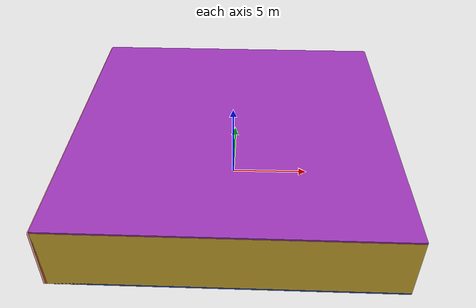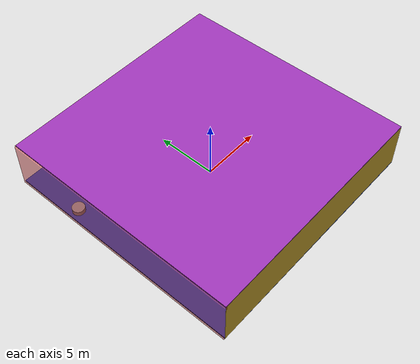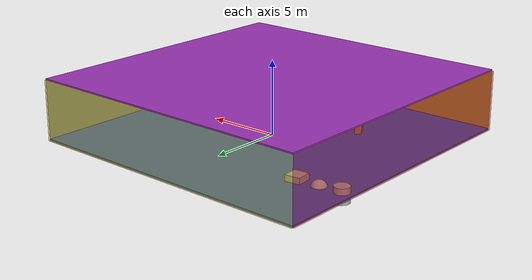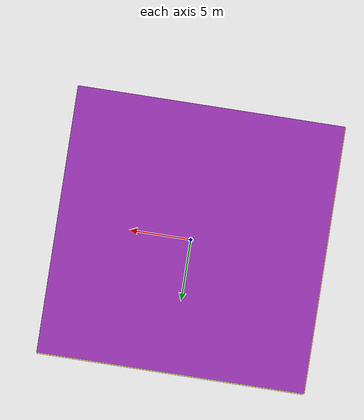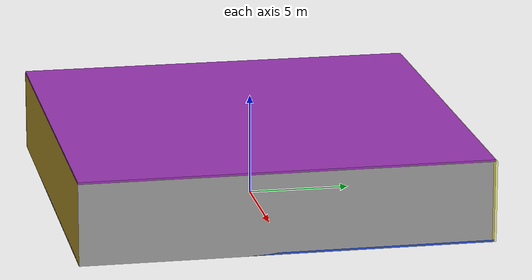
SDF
<sdf version="1.4">
 <world name="default">
  <physics type="ode">
   <max_step_size>0.001</max_step_size>
   <real_time_factor>1</real_time_factor>
   <real_time_update_rate>1000</real_time_update_rate>
   <gravity>0 0 -9.8</gravity>
  </physics>
  <scene><ambient>0.4 0.4 0.4 1</ambient><background>0.7 0.7 0.7 1</background><shadows>1</shadows></scene>
  <model name="Surrounding">
   <static>1</static>
   <link name="Ceiling">
    <collision name="Ceiling_Collision"><geometry><box><size>20 20 0.1</size></box></geometry></collision>
    <visual name="Ceiling_Visual">
     <geometry><box><size>20 20 0.1</size></box></geometry>
     <material>
      <script><uri>file://media/materials/scripts/gazebo.material</uri><name>Gazebo/Purple</name></script>
     </material>
    </visual>
    <pose>0 0 4.05 0 0 0</pose>
   </link>
   <link name="Wall_South">
    <collision name="Wall_South_Collision">
     <geometry><box><size>20 0 4</size></box></geometry>
     <pose>0 0 2 0 -0 0</pose>
    </collision>
    <visual name="Wall_South_Visual">
     <pose>0 0 2 0 -0 0</pose>
     <geometry><box><size>20 0 4</size></box></geometry>
     <material>
      <script><uri>file://media/materials/scripts/gazebo.material</uri><name>Gazebo/Gold</name></script>
     </material>
    </visual>
    <velocity_decay><linear>0</linear><angular>0</angular></velocity_decay>
    <pose>0 -10 0 0 -0 0</pose>
   </link>
   <link name="Wall_East">
    <collision name="Wall_21_Collision">
     <geometry><box><size>20 0 4</size></box></geometry>
     <pose>0 0 2 0 -0 0</pose>
    </collision>
    <visual name="Wall_21_Visual">
     <pose>0 0 2 0 -0 0</pose>
     <geometry><box><size>20 0 4</size></box></geometry>
     <material>
      <script><uri>file://media/materials/scripts/gazebo.material</uri><name>Gazebo/Grey</name></script>
     </material>
    </visual>
    <velocity_decay><linear>0</linear><angular>0</angular></velocity_decay>
    <pose>10 0 0 0 -0 1.5708</pose>
   </link>
   <link name="Wall_North">
    <collision name="Wall_22_Collision">
     <geometry><box><size>20 0.2 4</size></box></geometry>
     <pose>0 0 2 0 -0 0</pose>
    </collision>
    <visual name="Wall_22_Visual">
     <pose>0 0 2 0 -0 0</pose>
     <geometry><box><size>20 0.2 4</size></box></geometry>
     <material>
      <script>
       <uri>file://media/materials/scripts/gazebo.material</uri>
       <name>Gazebo/YellowTransparent</name>
      </script>
     </material>
    </visual>
    <velocity_decay><linear>0</linear><angular>0</angular></velocity_decay>
    <pose>0 10 0 0 -0 0</pose>
   </link>
   <link name="Wall_West">
    <collision name="Wall_23_Collision">
     <geometry><box><size>20 0.2 4</size></box></geometry>
     <pose>0 0 2 0 -0 0</pose>
    </collision>
    <visual name="Wall_23_Visual">
     <pose>0 0 2 0 -0 0</pose>
     <geometry><box><size>20 0.2 4</size></box></geometry>
     <material>
      <script><uri>file://media/materials/scripts/gazebo.material</uri><name>Gazebo/RedTransparent</name></script>
     </material>
    </visual>
    <velocity_decay><linear>0</linear><angular>0</angular></velocity_decay>
    <pose>-10 0 0 0 0 -1.5708</pose>
   </link>
   <link name="Ground_link">
    <collision name="collision">
     <pose>0 0 .05 0 -0 0</pose>
     <geometry><box><size>20 20 0.1</size></box></geometry>
    </collision>
    <visual name="visual">
     <pose>0 0 .05 0 -0 0</pose>
     <geometry><box><size>20 20 0.1</size></box></geometry>
     <material>
      <script><uri>file://media/materials/scripts/gazebo.material</uri><name>Gazebo/BlueGlow</name></script>
     </material>
    </visual>
   </link>
   <static>1</static>
  </model>
  <spherical_coordinates>
   <surface_model>EARTH_WGS84</surface_model>
   <latitude_deg>0</latitude_deg>
   <longitude_deg>0</longitude_deg>
   <elevation>0</elevation>
   <heading_deg>0</heading_deg>
  </spherical_coordinates>
  <light name="lightball_0" type="diffuse">
   <diffuse>0.8 0.8 0.8 1</diffuse>
   <specular>0.2 0.2 0.2 1</specular>
   <attenuation>
    <range>100</range>
    <constant>0.7</constant>
    <linear>0.01</linear>
    <quadratic>0.001</quadratic>
   </attenuation>
   <direction>-0.5 0.1 -0.9</direction>
   <pose>3.05915871943 -8.48329184185 1.66065172257 0 0 0</pose>
  </light>
  <light name="lightball_1" type="diffuse">
   <diffuse>0.8 0.8 0.8 1</diffuse>
   <specular>0.2 0.2 0.2 1</specular>
   <attenuation>
    <range>100</range>
    <constant>0.7</constant>
    <linear>0.01</linear>
    <quadratic>0.001</quadratic>
   </attenuation>
   <direction>-0.5 0.1 -0.9</direction>
   <pose>-4.99309644281 1.41643143922 2.68911643202 0 0 0</pose>
  </light>
  <light name="lightball_2" type="diffuse">
   <diffuse>0.8 0.8 0.8 1</diffuse>
   <specular>0.2 0.2 0.2 1</specular>
   <attenuation>
    <range>100</range>
    <constant>0.7</constant>
    <linear>0.01</linear>
    <quadratic>0.001</quadratic>
   </attenuation>
   <direction>-0.5 0.1 -0.9</direction>
   <pose>-1.44826537335 -7.83473003853 1.79411949268 0 0 0</pose>
  </light>
  <light name="lightball_3" type="diffuse">
   <diffuse>0.8 0.8 0.8 1</diffuse>
   <specular>0.2 0.2 0.2 1</specular>
   <attenuation>
    <range>100</range>
    <constant>0.7</constant>
    <linear>0.01</linear>
    <quadratic>0.001</quadratic>
   </attenuation>
   <direction>-0.5 0.1 -0.9</direction>
   <pose>8.85648016385 2.72584043283 1.09734510174 0 0 0</pose>
  </light>
  <light name="lightball_4" type="diffuse">
   <diffuse>0.8 0.8 0.8 1</diffuse>
   <specular>0.2 0.2 0.2 1</specular>
   <attenuation>
    <range>100</range>
    <constant>0.7</constant>
    <linear>0.01</linear>
    <quadratic>0.001</quadratic>
   </attenuation>
   <direction>-0.5 0.1 -0.9</direction>
   <pose>-9.92334653557 -2.39982078635 1.48852910474 0 0 0</pose>
  </light>
  <light name="lightball_5" type="diffuse">
   <diffuse>0.8 0.8 0.8 1</diffuse>
   <specular>0.2 0.2 0.2 1</specular>
   <attenuation>
    <range>100</range>
    <constant>0.7</constant>
    <linear>0.01</linear>
    <quadratic>0.001</quadratic>
   </attenuation>
   <direction>-0.5 0.1 -0.9</direction>
   <pose>0.830327367503 -6.55786182239 1.11689018378 0 0 0</pose>
  </light>
  <include>
   <uri>model://textured_shapes</uri>
   <pose>-7.74021719634 4.94955477836 0 0 0 1.66321472308</pose>
  </include>
  <include><uri>model://cabinet</uri><pose>-4.11645856659 -3.72153694231 0 0 0 0.452347146011</pose></include>
 </world>
</sdf>

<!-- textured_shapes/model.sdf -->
<sdf version="1.6">
  <model name="textured_shapes">
    <pose>0 0 0.5 0 0 0</pose>
    <link name="box">
      <pose>0 -1.5 0 0 0 0</pose>
      <collision name="collision">
        <geometry>
          <box>
            <size>1 1 1</size>
          </box>
        </geometry>
      </collision>
      <visual name="visual">
        <geometry>
          <box>
            <size>1 1 1</size>
          </box>
        </geometry>
        <material>
          <script>
            <uri>model://../model_source/models/textured_shapes/materials/scripts</uri>
            <uri>model://../model_source/models/textured_shapes/materials/textures</uri>
            <name>TexturedShape/Squares</name>
          </script>
        </material>
      </visual>
    </link>
    <link name="sphere">
      <collision name="collision">
        <geometry>
          <sphere>
            <radius>0.5</radius>
          </sphere>
        </geometry>
      </collision>
      <visual name="visual">
        <geometry>
          <sphere>
            <radius>0.5</radius>
          </sphere>
        </geometry>
        <material>
          <script>
            <uri>model://../model_source/models/textured_shapes/materials/scripts</uri>
            <uri>model://../model_source/models/textured_shapes/materials/textures</uri>
            <name>TexturedShape/Squares</name>
          </script>
        </material>
      </visual>
    </link>
    <link name="cylinder">
      <pose>0 1.5 0 0 0 0</pose>
      <collision name="collision">
        <geometry>
          <cylinder>
            <radius>0.5</radius>
            <length>1</length>
          </cylinder>
        </geometry>
      </collision>
      <visual name="visual">
        <geometry>
          <cylinder>
            <radius>0.5</radius>
            <length>1</length>
          </cylinder>
        </geometry>
        <material>
          <script>
            <uri>model://../model_source/models/textured_shapes/materials/scripts</uri>
            <uri>model://../model_source/models/textured_shapes/materials/textures</uri>
            <name>TexturedShape/Squares</name>
          </script>
        </material>
      </visual>
    </link>
  </model>
</sdf>

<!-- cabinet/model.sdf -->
<sdf version="1.5">
  <model name="cabinet">
    <static>true</static>
    <link name="cabinet_bottom_plate">
      <inertial>
        <pose>0 0 -1 0 0 0</pose>
        <inertia>
          <ixx>2.050000</ixx>
          <ixy>0</ixy>
          <ixz>0</ixz>
          <iyy>2.050000</iyy>
          <iyz>0</iyz>
          <izz>2.050000</izz>
        </inertia>
        <mass>25.000000</mass>
      </inertial>
      <collision name="cabinet_bottom_plate_geom">
        <pose>0 0 0.010000 0 0 0</pose>
        <geometry>
          <box>
            <size>0.450000 0.450000 0.020000</size>
          </box>
        </geometry>
      </collision>
      <visual name="cabinet_bottom_plate_geom_visual">
        <pose>0 0 0.010000 0 0 0</pose>
        <geometry>
          <box>
            <size>0.450000 0.450000 0.020000</size>
          </box>
        </geometry>
        <material>
          <script>
            <uri>model://media/materials/scripts/gazebo.material</uri>
            <name>Gazebo/Wood</name>
          </script>
        </material>
      </visual>
      <collision name="cabinet_bottom_plate_geom_cabinet_back_plate">
        <pose>0.235000 0 0.510000 0 0 0</pose>
        <geometry>
          <box>
            <size>0.020000 0.450000 1.020000</size>
          </box>
        </geometry>
      </collision>
      <visual name="cabinet_bottom_plate_geom_cabinet_back_plate_visual">
        <pose>0.235000 0 0.510000 0 0 0</pose>
        <geometry>
          <box>
            <size>0.020000 0.450000 1.020000</size>
          </box>
        </geometry>
        <material>
          <script>
            <uri>model://media/materials/scripts/gazebo.material</uri>
            <name>Gazebo/Wood</name>
          </script>
        </material>
      </visual>
      <collision name="cabinet_bottom_plate_geom_cabinet_left_plate">
        <pose>0 0.235000 0.510000 0 0 0</pose>
        <geometry>
          <box>
            <size>0.450000 0.020000 1.020000</size>
          </box>
        </geometry>
      </collision>
      <visual name="cabinet_bottom_plate_geom_cabinet_left_plate_visual">
        <pose>0 0.235000 0.510000 0 0 0</pose>
        <geometry>
          <box>
            <size>0.450000 0.020000 1.020000</size>
          </box>
        </geometry>
        <material>
          <script>
            <uri>model://media/materials/scripts/gazebo.material</uri>
            <name>Gazebo/Wood</name>
          </script>
        </material>
      </visual>
      <collision name="cabinet_bottom_plate_geom_cabinet_middle_plate">
        <pose>0 0 0.510000 0 0 0</pose>
        <geometry>
          <box>
            <size>0.450000 0.450000 0.020000</size>
          </box>
        </geometry>
      </collision>
      <visual name="cabinet_bottom_plate_geom_cabinet_middle_plate_visual">
        <pose>0 0 0.510000 0 0 0</pose>
        <geometry>
          <box>
            <size>0.450000 0.450000 0.020000</size>
          </box>
        </geometry>
        <material>
          <script>
            <uri>model://media/materials/scripts/gazebo.material</uri>
            <name>Gazebo/Wood</name>
          </script>
        </material>
      </visual>
      <collision name="cabinet_bottom_plate_geom_cabinet_right_plate">
        <pose>0 -0.235000 0.510000 0 0 0</pose>
        <geometry>
          <box>
            <size>0.450000 0.020000 1.020000</size>
          </box>
        </geometry>
      </collision>
      <visual name="cabinet_bottom_plate_geom_cabinet_right_plate_visual">
        <pose>0 -0.235000 0.510000 0 0 0</pose>
        <geometry>
          <box>
            <size>0.450000 0.020000 1.020000</size>
          </box>
        </geometry>
        <material>
          <script>
            <uri>model://media/materials/scripts/gazebo.material</uri>
            <name>Gazebo/Wood</name>
          </script>
        </material>
      </visual>
      <collision name="cabinet_bottom_plate_geom_cabinet_top_plate">
        <pose>0 0 1.010000 0 0 0</pose>
        <geometry>
          <box>
            <size>0.450000 0.450000 0.020000</size>
          </box>
        </geometry>
      </collision>
      <visual name="cabinet_bottom_plate_geom_cabinet_top_plate_visual">
        <pose>0 0 1.010000 0 0 0</pose>
        <geometry>
          <box>
            <size>0.450000 0.450000 0.020000</size>
          </box>
        </geometry>
        <material>
          <script>
            <uri>model://media/materials/scripts/gazebo.material</uri>
            <name>Gazebo/Wood</name>
          </script>
        </material>
      </visual>
    </link>
  </model>
</sdf>
